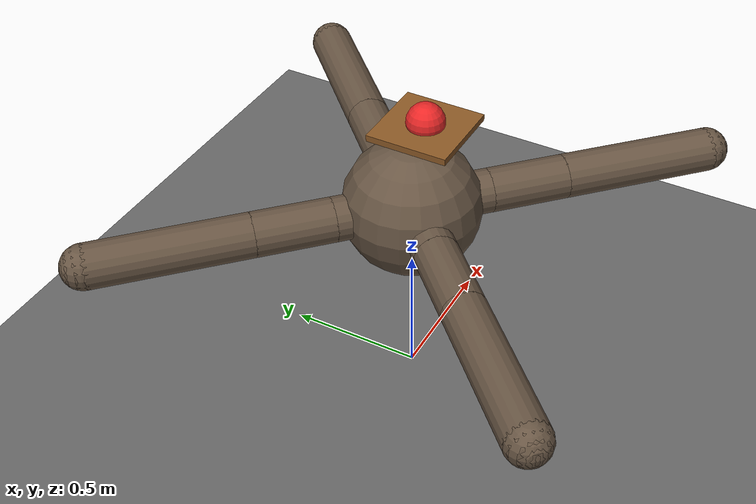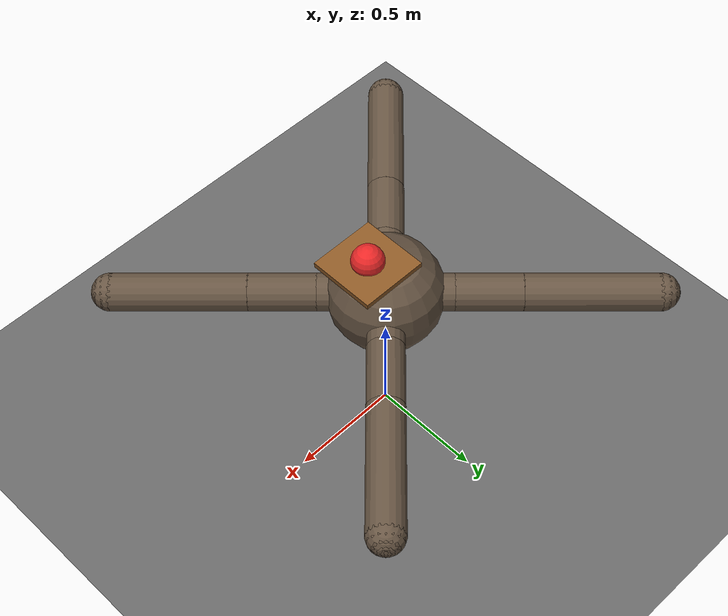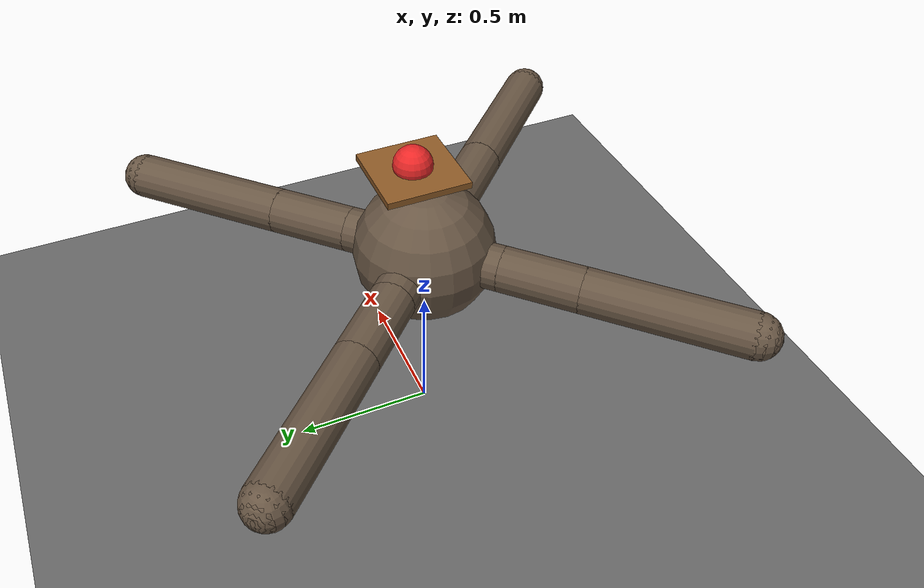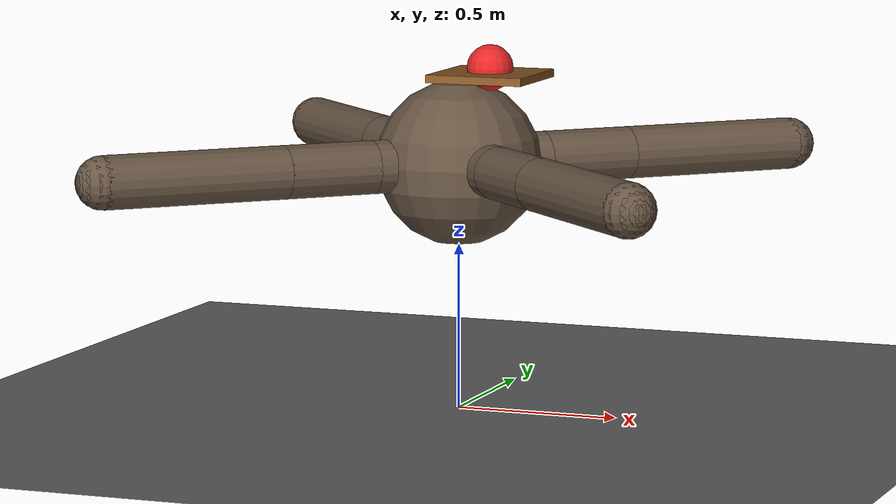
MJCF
<mujoco model="ant_ball">
  <compiler angle="degree" coordinate="local" inertiafromgeom="true"/>
  <option timestep="0.01" iterations="4" />
  <visual>
    <global offwidth="1920" offheight="1440"/>
  </visual>
  <custom>
    <!-- brax custom params -->
    <!-- init_qpos: 15 ant DOFs + 7 ball free joint DOFs = 22 total -->
    <!-- Ant: x=0, y=0, z=0.55, quat=(1,0,0,0), 8 hinge joints -->
    <!-- Ball: x=0.10, y=0, z=0.92 (offset to match tray position) -->
    <numeric data="0.0 0.0 0.55 1.0 0.0 0.0 0.0 0.0 1.0 0.0 -1.0 0.0 -1.0 0.0 1.0 0.10 0.0 0.92 1.0 0.0 0.0 0.0" name="init_qpos"/>
    <numeric data="1000" name="constraint_limit_stiffness"/>
    <numeric data="4000" name="constraint_stiffness"/>
    <numeric data="10" name="constraint_ang_damping"/>
    <numeric data="20" name="constraint_vel_damping"/>
    <numeric data="0.5" name="joint_scale_pos"/>
    <numeric data="0.2" name="joint_scale_ang"/>
    <numeric data="0.0" name="ang_damping"/>
    <numeric data="1" name="spring_mass_scale"/>
    <numeric data="1" name="spring_inertia_scale"/>
    <numeric data="15" name="solver_maxls"/>
  </custom>
  <default>
    <joint armature="1" damping="1" limited="true"/>
    <geom contype="0" conaffinity="0" condim="3" density="5.0" friction="1 0.5 0.5"
     rgba="0.4 0.33 0.26 1.0"/>
  </default>
  <asset>
    <texture builtin="gradient" height="100" rgb1="1 1 1" rgb2="0 0 0" type="skybox" width="100"/>
    <texture builtin="flat" height="1278" mark="cross" markrgb="1 1 1" name="texgeom" random="0.01" rgb1="0.8 0.6 0.4" rgb2="0.8 0.6 0.4" type="cube" width="127"/>
    <texture builtin="checker" height="100" name="texplane" rgb1="0 0 0" rgb2="0.8 0.8 0.8" type="2d" width="100"/>
    <material name="MatPlane" reflectance="0.5" shininess="1" specular="1" texrepeat="60 60" texture="texplane"/>
    <material name="geom" texture="texgeom" texuniform="true"/>
  </asset>
  <worldbody>
    <light cutoff="100" diffuse="1 1 1" dir="-0 0 -1.3" directional="true" exponent="1" pos="0 0 1.3" specular=".1 .1 .1"/>
    <geom conaffinity="1" condim="3" material="MatPlane" name="floor" pos="0 0 0" size="40 40 40" type="plane" rgba="0.5 0.5 0.5 1.0"/>
    <body name="torso" pos="0 0 0.75">
      <camera name="track" mode="trackcom" pos="0 -3 0.3" xyaxes="1 0 0 0 0 1"/>
      <geom name="torso_geom" pos="0 0 0" size="0.25" type="sphere"/>
      <joint armature="0" damping="0" limited="false" margin="0.01" name="root" pos="0 0 0" type="free"/>
      <!-- Tray offset toward +x (forward direction): front legs are critical for balance -->
      <!-- Smaller tray + offset = front-leg agents must be careful, back-leg agents push -->
      <geom name="tray_geom" type="box" size="0.15 0.15 0.012" pos="0.10 0 0.265"
            contype="1" conaffinity="1" condim="3" density="1.0"
            rgba="0.55 0.35 0.15 1.0" friction="0.8 0.2 0.2"/>
      <body name="front_left_leg" pos="0 0 0">
        <geom fromto="0.0 0.0 0.0 0.2 0.2 0.0" name="aux_1_geom" size="0.08" type="capsule"/>
        <body name="aux_1" pos="0.2 0.2 0">
          <joint axis="0 0 1" name="hip_1" pos="0.0 0.0 0.0" range="-30 30" type="hinge"/>
          <geom fromto="0.0 0.0 0.0 0.2 0.2 0.0" name="left_leg_geom" size="0.08" type="capsule"/>
          <body pos="0.2 0.2 0">
            <joint axis="-1 1 0" name="ankle_1" pos="0.0 0.0 0.0" range="30 70" type="hinge"/>
            <geom fromto="0.0 0.0 0.0 0.4 0.4 0.0" name="left_ankle_geom" size="0.08" type="capsule"/>
            <geom name="left_foot_geom" contype="1" pos="0.4 0.4 0" size="0.08" type="sphere" mass="0"/>
          </body>
        </body>
      </body>
      <body name="front_right_leg" pos="0 0 0">
        <geom fromto="0.0 0.0 0.0 -0.2 0.2 0.0" name="aux_2_geom" size="0.08" type="capsule"/>
        <body name="aux_2" pos="-0.2 0.2 0">
          <joint axis="0 0 1" name="hip_2" pos="0.0 0.0 0.0" range="-30 30" type="hinge"/>
          <geom fromto="0.0 0.0 0.0 -0.2 0.2 0.0" name="right_leg_geom" size="0.08" type="capsule"/>
          <body pos="-0.2 0.2 0">
            <joint axis="1 1 0" name="ankle_2" pos="0.0 0.0 0.0" range="-70 -30" type="hinge"/>
            <geom fromto="0.0 0.0 0.0 -0.4 0.4 0.0" name="right_ankle_geom" size="0.08" type="capsule"/>
            <geom name="right_foot_geom" contype="1" pos="-0.4 0.4 0" size="0.08" type="sphere" mass="0"/>
          </body>
        </body>
      </body>
      <body name="back_leg" pos="0 0 0">
        <geom fromto="0.0 0.0 0.0 -0.2 -0.2 0.0" name="aux_3_geom" size="0.08" type="capsule"/>
        <body name="aux_3" pos="-0.2 -0.2 0">
          <joint axis="0 0 1" name="hip_3" pos="0.0 0.0 0.0" range="-30 30" type="hinge"/>
          <geom fromto="0.0 0.0 0.0 -0.2 -0.2 0.0" name="back_leg_geom" size="0.08" type="capsule"/>
          <body pos="-0.2 -0.2 0">
            <joint axis="-1 1 0" name="ankle_3" pos="0.0 0.0 0.0" range="-70 -30" type="hinge"/>
            <geom fromto="0.0 0.0 0.0 -0.4 -0.4 0.0" name="third_ankle_geom" size="0.08" type="capsule"/>
            <geom name="third_foot_geom" contype="1" pos="-0.4 -0.4 0" size="0.08" type="sphere" mass="0"/>
          </body>
        </body>
      </body>
      <body name="right_back_leg" pos="0 0 0">
        <geom fromto="0.0 0.0 0.0 0.2 -0.2 0.0" name="aux_4_geom" size="0.08" type="capsule"/>
        <body name="aux_4" pos="0.2 -0.2 0">
          <joint axis="0 0 1" name="hip_4" pos="0.0 0.0 0.0" range="-30 30" type="hinge"/>
          <geom fromto="0.0 0.0 0.0 0.2 -0.2 0.0" name="rightback_leg_geom" size="0.08" type="capsule"/>
          <body pos="0.2 -0.2 0">
            <joint axis="1 1 0" name="ankle_4" pos="0.0 0.0 0.0" range="30 70" type="hinge"/>
            <geom fromto="0.0 0.0 0.0 0.4 -0.4 0.0" name="fourth_ankle_geom" size="0.08" type="capsule"/>
            <geom name="fourth_foot_geom" contype="1" pos="0.4 -0.4 0" size="0.08" type="sphere" mass="0"/>
          </body>
        </body>
      </body>
    </body>
    <!-- Ball: heavy free body offset to match tray, easily falls off -->
    <body name="ball" pos="0.10 0 1.04">
      <joint name="ball_root" type="free" armature="0" damping="0" limited="false"/>
      <geom name="ball_geom" type="sphere" size="0.07"
            contype="1" conaffinity="1" condim="3" density="5.0"
            rgba="0.9 0.15 0.15 1.0" friction="0.6 0.2 0.2"/>
    </body>
  </worldbody>
  <actuator>
    <motor ctrllimited="true" ctrlrange="-1.0 1.0" joint="hip_4" gear="150"/>
    <motor ctrllimited="true" ctrlrange="-1.0 1.0" joint="ankle_4" gear="150"/>
    <motor ctrllimited="true" ctrlrange="-1.0 1.0" joint="hip_1" gear="150"/>
    <motor ctrllimited="true" ctrlrange="-1.0 1.0" joint="ankle_1" gear="150"/>
    <motor ctrllimited="true" ctrlrange="-1.0 1.0" joint="hip_2" gear="150"/>
    <motor ctrllimited="true" ctrlrange="-1.0 1.0" joint="ankle_2" gear="150"/>
    <motor ctrllimited="true" ctrlrange="-1.0 1.0" joint="hip_3" gear="150"/>
    <motor ctrllimited="true" ctrlrange="-1.0 1.0" joint="ankle_3" gear="150"/>
  </actuator>
</mujoco>
